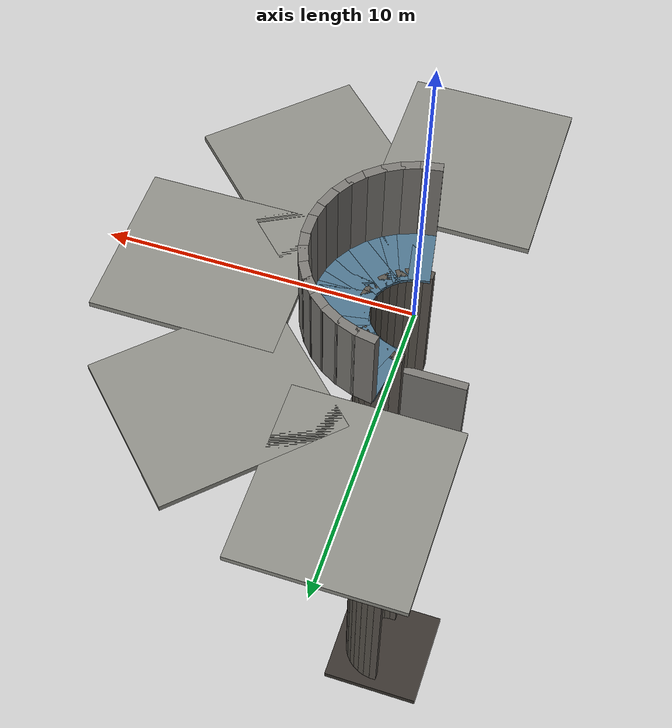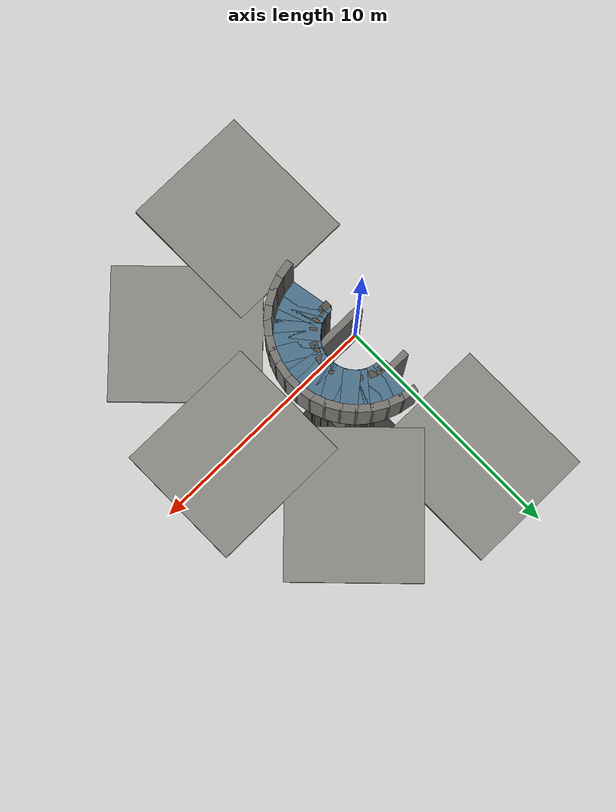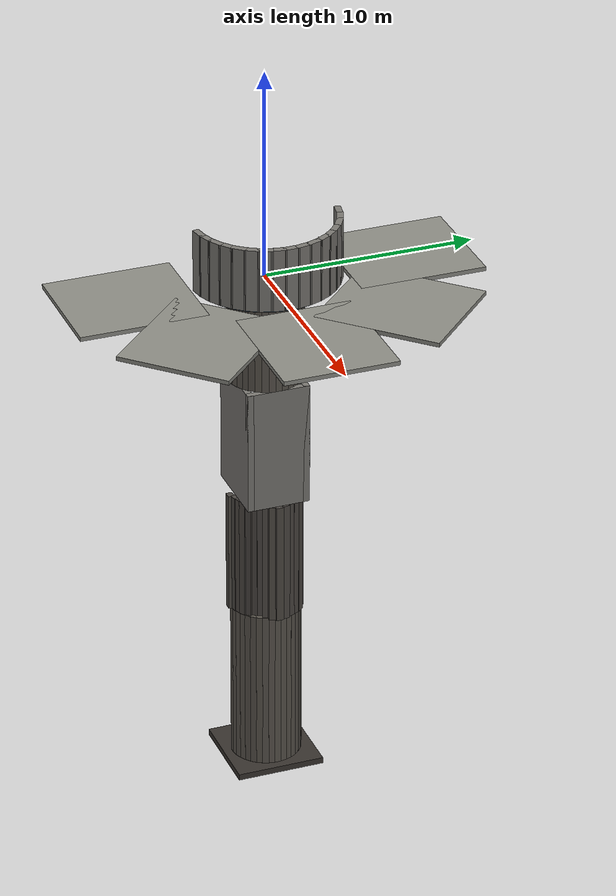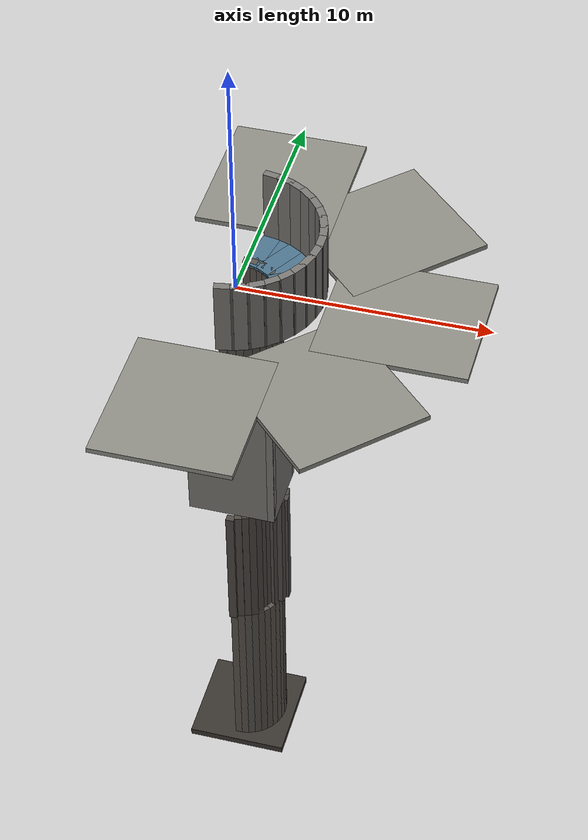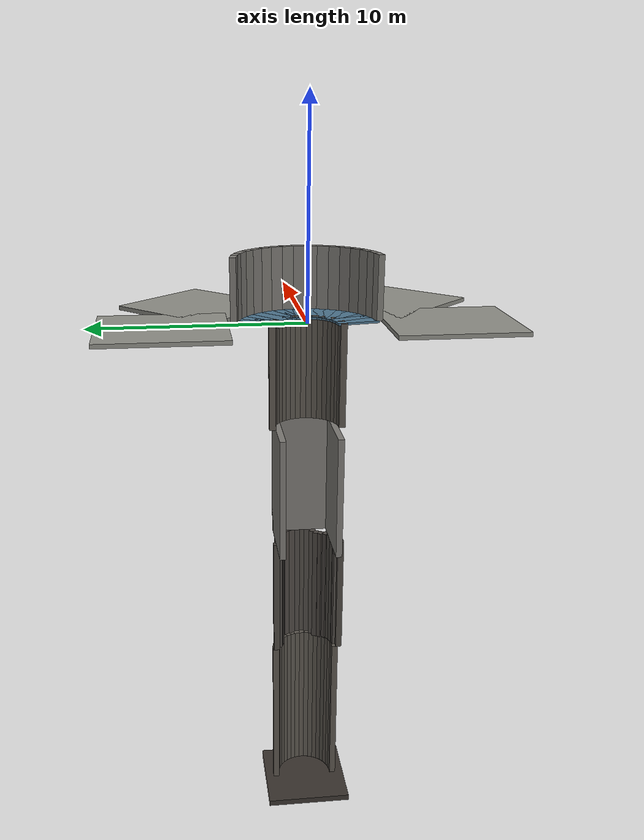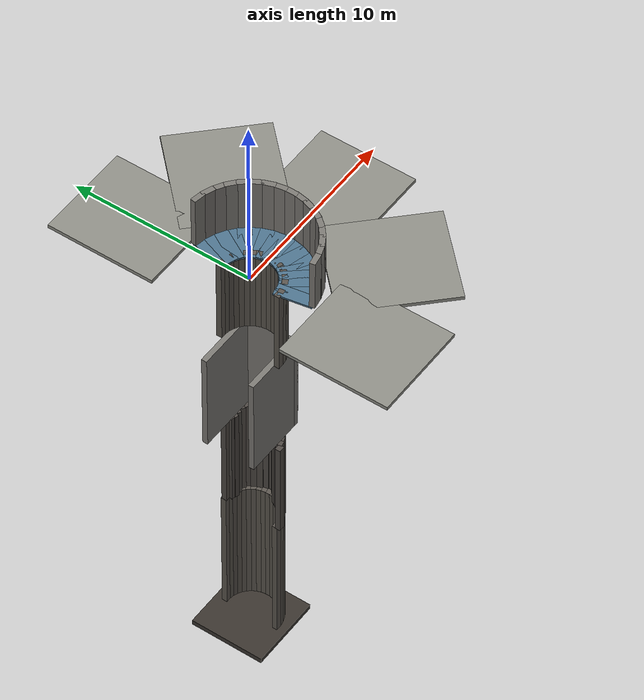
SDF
<sdf version="1.9">
 <world name="vshaft">
  <model name="inspection_shaft">
   <static>true</static>
   <link name="b0_chamber_0">
    <pose>3.3500 0.0000 1.5000 0 0 0.000000</pose>
    <collision name="c"><geometry><box><size>0.300 0.700 3.000</size></box></geometry></collision>
    <visual name="v">
     <geometry><box><size>0.300 0.700 3.000</size></box></geometry>
     <material><ambient>0.48 0.47 0.45 1</ambient><diffuse>0.48 0.47 0.45 1</diffuse></material>
    </visual>
   </link>
   <link name="b0_chamber_1">
    <pose>3.2991 0.5817 1.5000 0 0 0.174533</pose>
    <collision name="c"><geometry><box><size>0.300 0.700 3.000</size></box></geometry></collision>
    <visual name="v">
     <geometry><box><size>0.300 0.700 3.000</size></box></geometry>
     <material><ambient>0.48 0.47 0.45 1</ambient><diffuse>0.48 0.47 0.45 1</diffuse></material>
    </visual>
   </link>
   <link name="b0_chamber_2">
    <pose>3.1480 1.1458 1.5000 0 0 0.349066</pose>
    <collision name="c"><geometry><box><size>0.300 0.700 3.000</size></box></geometry></collision>
    <visual name="v">
     <geometry><box><size>0.300 0.700 3.000</size></box></geometry>
     <material><ambient>0.48 0.47 0.45 1</ambient><diffuse>0.48 0.47 0.45 1</diffuse></material>
    </visual>
   </link>
   <link name="b0_chamber_3">
    <pose>2.9012 1.6750 1.5000 0 0 0.523599</pose>
    <collision name="c"><geometry><box><size>0.300 0.700 3.000</size></box></geometry></collision>
    <visual name="v">
     <geometry><box><size>0.300 0.700 3.000</size></box></geometry>
     <material><ambient>0.48 0.47 0.45 1</ambient><diffuse>0.48 0.47 0.45 1</diffuse></material>
    </visual>
   </link>
   <link name="b0_chamber_4">
    <pose>2.5662 2.1533 1.5000 0 0 0.698132</pose>
    <collision name="c"><geometry><box><size>0.300 0.700 3.000</size></box></geometry></collision>
    <visual name="v">
     <geometry><box><size>0.300 0.700 3.000</size></box></geometry>
     <material><ambient>0.48 0.47 0.45 1</ambient><diffuse>0.48 0.47 0.45 1</diffuse></material>
    </visual>
   </link>
   <link name="b0_chamber_5">
    <pose>2.1533 2.5662 1.5000 0 0 0.872665</pose>
    <collision name="c"><geometry><box><size>0.300 0.700 3.000</size></box></geometry></collision>
    <visual name="v">
     <geometry><box><size>0.300 0.700 3.000</size></box></geometry>
     <material><ambient>0.48 0.47 0.45 1</ambient><diffuse>0.48 0.47 0.45 1</diffuse></material>
    </visual>
   </link>
   <link name="b0_chamber_6">
    <pose>1.6750 2.9012 1.5000 0 0 1.047198</pose>
    <collision name="c"><geometry><box><size>0.300 0.700 3.000</size></box></geometry></collision>
    <visual name="v">
     <geometry><box><size>0.300 0.700 3.000</size></box></geometry>
     <material><ambient>0.48 0.47 0.45 1</ambient><diffuse>0.48 0.47 0.45 1</diffuse></material>
    </visual>
   </link>
   <link name="b0_chamber_7">
    <pose>1.1458 3.1480 1.5000 0 0 1.221730</pose>
    <collision name="c"><geometry><box><size>0.300 0.700 3.000</size></box></geometry></collision>
    <visual name="v">
     <geometry><box><size>0.300 0.700 3.000</size></box></geometry>
     <material><ambient>0.48 0.47 0.45 1</ambient><diffuse>0.48 0.47 0.45 1</diffuse></material>
    </visual>
   </link>
   <link name="b0_chamber_8">
    <pose>0.5817 3.2991 1.5000 0 0 1.396263</pose>
    <collision name="c"><geometry><box><size>0.300 0.700 3.000</size></box></geometry></collision>
    <visual name="v">
     <geometry><box><size>0.300 0.700 3.000</size></box></geometry>
     <material><ambient>0.48 0.47 0.45 1</ambient><diffuse>0.48 0.47 0.45 1</diffuse></material>
    </visual>
   </link>
   <link name="b0_chamber_28">
    <pose>0.5817 -3.2991 1.5000 0 0 4.886922</pose>
    <collision name="c"><geometry><box><size>0.300 0.700 3.000</size></box></geometry></collision>
    <visual name="v">
     <geometry><box><size>0.300 0.700 3.000</size></box></geometry>
     <material><ambient>0.48 0.47 0.45 1</ambient><diffuse>0.48 0.47 0.45 1</diffuse></material>
    </visual>
   </link>
   <link name="b0_chamber_29">
    <pose>1.1458 -3.1480 1.5000 0 0 5.061455</pose>
    <collision name="c"><geometry><box><size>0.300 0.700 3.000</size></box></geometry></collision>
    <visual name="v">
     <geometry><box><size>0.300 0.700 3.000</size></box></geometry>
     <material><ambient>0.48 0.47 0.45 1</ambient><diffuse>0.48 0.47 0.45 1</diffuse></material>
    </visual>
   </link>
   <link name="b0_chamber_30">
    <pose>1.6750 -2.9012 1.5000 0 0 5.235988</pose>
    <collision name="c"><geometry><box><size>0.300 0.700 3.000</size></box></geometry></collision>
    <visual name="v">
     <geometry><box><size>0.300 0.700 3.000</size></box></geometry>
     <material><ambient>0.48 0.47 0.45 1</ambient><diffuse>0.48 0.47 0.45 1</diffuse></material>
    </visual>
   </link>
   <link name="b0_chamber_31">
    <pose>2.1533 -2.5662 1.5000 0 0 5.410521</pose>
    <collision name="c"><geometry><box><size>0.300 0.700 3.000</size></box></geometry></collision>
    <visual name="v">
     <geometry><box><size>0.300 0.700 3.000</size></box></geometry>
     <material><ambient>0.48 0.47 0.45 1</ambient><diffuse>0.48 0.47 0.45 1</diffuse></material>
    </visual>
   </link>
   <link name="b0_chamber_32">
    <pose>2.5662 -2.1533 1.5000 0 0 5.585054</pose>
    <collision name="c"><geometry><box><size>0.300 0.700 3.000</size></box></geometry></collision>
    <visual name="v">
     <geometry><box><size>0.300 0.700 3.000</size></box></geometry>
     <material><ambient>0.48 0.47 0.45 1</ambient><diffuse>0.48 0.47 0.45 1</diffuse></material>
    </visual>
   </link>
   <link name="b0_chamber_33">
    <pose>2.9012 -1.6750 1.5000 0 0 5.759587</pose>
    <collision name="c"><geometry><box><size>0.300 0.700 3.000</size></box></geometry></collision>
    <visual name="v">
     <geometry><box><size>0.300 0.700 3.000</size></box></geometry>
     <material><ambient>0.48 0.47 0.45 1</ambient><diffuse>0.48 0.47 0.45 1</diffuse></material>
    </visual>
   </link>
   <link name="b0_chamber_34">
    <pose>3.1480 -1.1458 1.5000 0 0 5.934119</pose>
    <collision name="c"><geometry><box><size>0.300 0.700 3.000</size></box></geometry></collision>
    <visual name="v">
     <geometry><box><size>0.300 0.700 3.000</size></box></geometry>
     <material><ambient>0.48 0.47 0.45 1</ambient><diffuse>0.48 0.47 0.45 1</diffuse></material>
    </visual>
   </link>
   <link name="b0_chamber_35">
    <pose>3.2991 -0.5817 1.5000 0 0 6.108652</pose>
    <collision name="c"><geometry><box><size>0.300 0.700 3.000</size></box></geometry></collision>
    <visual name="v">
     <geometry><box><size>0.300 0.700 3.000</size></box></geometry>
     <material><ambient>0.48 0.47 0.45 1</ambient><diffuse>0.48 0.47 0.45 1</diffuse></material>
    </visual>
   </link>
   <link name="ledge_ring_0">
    <pose>2.3500 0.0000 -0.0500 0 0 0.000000</pose>
    <collision name="c"><geometry><box><size>2.000 0.700 0.100</size></box></geometry></collision>
    <visual name="v">
     <geometry><box><size>2.000 0.700 0.100</size></box></geometry>
     <material><ambient>0.30 0.45 0.55 1</ambient><diffuse>0.30 0.45 0.55 1</diffuse></material>
    </visual>
   </link>
   <link name="ledge_ring_1">
    <pose>2.3143 0.4081 -0.0500 0 0 0.174533</pose>
    <collision name="c"><geometry><box><size>2.000 0.700 0.100</size></box></geometry></collision>
    <visual name="v">
     <geometry><box><size>2.000 0.700 0.100</size></box></geometry>
     <material><ambient>0.30 0.45 0.55 1</ambient><diffuse>0.30 0.45 0.55 1</diffuse></material>
    </visual>
   </link>
   <link name="ledge_ring_2">
    <pose>2.2083 0.8037 -0.0500 0 0 0.349066</pose>
    <collision name="c"><geometry><box><size>2.000 0.700 0.100</size></box></geometry></collision>
    <visual name="v">
     <geometry><box><size>2.000 0.700 0.100</size></box></geometry>
     <material><ambient>0.30 0.45 0.55 1</ambient><diffuse>0.30 0.45 0.55 1</diffuse></material>
    </visual>
   </link>
   <link name="ledge_ring_3">
    <pose>2.0352 1.1750 -0.0500 0 0 0.523599</pose>
    <collision name="c"><geometry><box><size>2.000 0.700 0.100</size></box></geometry></collision>
    <visual name="v">
     <geometry><box><size>2.000 0.700 0.100</size></box></geometry>
     <material><ambient>0.30 0.45 0.55 1</ambient><diffuse>0.30 0.45 0.55 1</diffuse></material>
    </visual>
   </link>
   <link name="ledge_ring_4">
    <pose>1.8002 1.5106 -0.0500 0 0 0.698132</pose>
    <collision name="c"><geometry><box><size>2.000 0.700 0.100</size></box></geometry></collision>
    <visual name="v">
     <geometry><box><size>2.000 0.700 0.100</size></box></geometry>
     <material><ambient>0.30 0.45 0.55 1</ambient><diffuse>0.30 0.45 0.55 1</diffuse></material>
    </visual>
   </link>
   <link name="ledge_ring_5">
    <pose>1.5106 1.8002 -0.0500 0 0 0.872665</pose>
    <collision name="c"><geometry><box><size>2.000 0.700 0.100</size></box></geometry></collision>
    <visual name="v">
     <geometry><box><size>2.000 0.700 0.100</size></box></geometry>
     <material><ambient>0.30 0.45 0.55 1</ambient><diffuse>0.30 0.45 0.55 1</diffuse></material>
    </visual>
   </link>
   <link name="ledge_ring_6">
    <pose>1.1750 2.0352 -0.0500 0 0 1.047198</pose>
    <collision name="c"><geometry><box><size>2.000 0.700 0.100</size></box></geometry></collision>
    <visual name="v">
     <geometry><box><size>2.000 0.700 0.100</size></box></geometry>
     <material><ambient>0.30 0.45 0.55 1</ambient><diffuse>0.30 0.45 0.55 1</diffuse></material>
    </visual>
   </link>
   <link name="ledge_ring_7">
    <pose>0.8037 2.2083 -0.0500 0 0 1.221730</pose>
    <collision name="c"><geometry><box><size>2.000 0.700 0.100</size></box></geometry></collision>
    <visual name="v">
     <geometry><box><size>2.000 0.700 0.100</size></box></geometry>
     <material><ambient>0.30 0.45 0.55 1</ambient><diffuse>0.30 0.45 0.55 1</diffuse></material>
    </visual>
   </link>
   <link name="ledge_ring_8">
    <pose>0.4081 2.3143 -0.0500 0 0 1.396263</pose>
    <collision name="c"><geometry><box><size>2.000 0.700 0.100</size></box></geometry></collision>
    <visual name="v">
     <geometry><box><size>2.000 0.700 0.100</size></box></geometry>
     <material><ambient>0.30 0.45 0.55 1</ambient><diffuse>0.30 0.45 0.55 1</diffuse></material>
    </visual>
   </link>
   <link name="ledge_ring_28">
    <pose>0.4081 -2.3143 -0.0500 0 0 4.886922</pose>
    <collision name="c"><geometry><box><size>2.000 0.700 0.100</size></box></geometry></collision>
    <visual name="v">
     <geometry><box><size>2.000 0.700 0.100</size></box></geometry>
     <material><ambient>0.30 0.45 0.55 1</ambient><diffuse>0.30 0.45 0.55 1</diffuse></material>
    </visual>
   </link>
   <link name="ledge_ring_29">
    <pose>0.8037 -2.2083 -0.0500 0 0 5.061455</pose>
    <collision name="c"><geometry><box><size>2.000 0.700 0.100</size></box></geometry></collision>
    <visual name="v">
     <geometry><box><size>2.000 0.700 0.100</size></box></geometry>
     <material><ambient>0.30 0.45 0.55 1</ambient><diffuse>0.30 0.45 0.55 1</diffuse></material>
    </visual>
   </link>
   <link name="ledge_ring_30">
    <pose>1.1750 -2.0352 -0.0500 0 0 5.235988</pose>
    <collision name="c"><geometry><box><size>2.000 0.700 0.100</size></box></geometry></collision>
    <visual name="v">
     <geometry><box><size>2.000 0.700 0.100</size></box></geometry>
     <material><ambient>0.30 0.45 0.55 1</ambient><diffuse>0.30 0.45 0.55 1</diffuse></material>
    </visual>
   </link>
   <link name="ledge_ring_31">
    <pose>1.5106 -1.8002 -0.0500 0 0 5.410521</pose>
    <collision name="c"><geometry><box><size>2.000 0.700 0.100</size></box></geometry></collision>
    <visual name="v">
     <geometry><box><size>2.000 0.700 0.100</size></box></geometry>
     <material><ambient>0.30 0.45 0.55 1</ambient><diffuse>0.30 0.45 0.55 1</diffuse></material>
    </visual>
   </link>
   <link name="ledge_ring_32">
    <pose>1.8002 -1.5106 -0.0500 0 0 5.585054</pose>
    <collision name="c"><geometry><box><size>2.000 0.700 0.100</size></box></geometry></collision>
    <visual name="v">
     <geometry><box><size>2.000 0.700 0.100</size></box></geometry>
     <material><ambient>0.30 0.45 0.55 1</ambient><diffuse>0.30 0.45 0.55 1</diffuse></material>
    </visual>
   </link>
   <link name="ledge_ring_33">
    <pose>2.0352 -1.1750 -0.0500 0 0 5.759587</pose>
    <collision name="c"><geometry><box><size>2.000 0.700 0.100</size></box></geometry></collision>
    <visual name="v">
     <geometry><box><size>2.000 0.700 0.100</size></box></geometry>
     <material><ambient>0.30 0.45 0.55 1</ambient><diffuse>0.30 0.45 0.55 1</diffuse></material>
    </visual>
   </link>
   <link name="ledge_ring_34">
    <pose>2.2083 -0.8037 -0.0500 0 0 5.934119</pose>
    <collision name="c"><geometry><box><size>2.000 0.700 0.100</size></box></geometry></collision>
    <visual name="v">
     <geometry><box><size>2.000 0.700 0.100</size></box></geometry>
     <material><ambient>0.30 0.45 0.55 1</ambient><diffuse>0.30 0.45 0.55 1</diffuse></material>
    </visual>
   </link>
   <link name="ledge_ring_35">
    <pose>2.3143 -0.4081 -0.0500 0 0 6.108652</pose>
    <collision name="c"><geometry><box><size>2.000 0.700 0.100</size></box></geometry></collision>
    <visual name="v">
     <geometry><box><size>2.000 0.700 0.100</size></box></geometry>
     <material><ambient>0.30 0.45 0.55 1</ambient><diffuse>0.30 0.45 0.55 1</diffuse></material>
    </visual>
   </link>
   <link name="b1_circ_0">
    <pose>1.6500 0.0000 -2.5000 0 0 0.000000</pose>
    <collision name="c"><geometry><box><size>0.300 0.328 5.000</size></box></geometry></collision>
    <visual name="v">
     <geometry><box><size>0.300 0.328 5.000</size></box></geometry>
     <material><ambient>0.35 0.33 0.30 1</ambient><diffuse>0.35 0.33 0.30 1</diffuse></material>
    </visual>
   </link>
   <link name="b1_circ_1">
    <pose>1.6249 0.2865 -2.5000 0 0 0.174533</pose>
    <collision name="c"><geometry><box><size>0.300 0.328 5.000</size></box></geometry></collision>
    <visual name="v">
     <geometry><box><size>0.300 0.328 5.000</size></box></geometry>
     <material><ambient>0.35 0.33 0.30 1</ambient><diffuse>0.35 0.33 0.30 1</diffuse></material>
    </visual>
   </link>
   <link name="b1_circ_2">
    <pose>1.5505 0.5643 -2.5000 0 0 0.349066</pose>
    <collision name="c"><geometry><box><size>0.300 0.328 5.000</size></box></geometry></collision>
    <visual name="v">
     <geometry><box><size>0.300 0.328 5.000</size></box></geometry>
     <material><ambient>0.35 0.33 0.30 1</ambient><diffuse>0.35 0.33 0.30 1</diffuse></material>
    </visual>
   </link>
   <link name="b1_circ_3">
    <pose>1.4289 0.8250 -2.5000 0 0 0.523599</pose>
    <collision name="c"><geometry><box><size>0.300 0.328 5.000</size></box></geometry></collision>
    <visual name="v">
     <geometry><box><size>0.300 0.328 5.000</size></box></geometry>
     <material><ambient>0.35 0.33 0.30 1</ambient><diffuse>0.35 0.33 0.30 1</diffuse></material>
    </visual>
   </link>
   <link name="b1_circ_4">
    <pose>1.2640 1.0606 -2.5000 0 0 0.698132</pose>
    <collision name="c"><geometry><box><size>0.300 0.328 5.000</size></box></geometry></collision>
    <visual name="v">
     <geometry><box><size>0.300 0.328 5.000</size></box></geometry>
     <material><ambient>0.35 0.33 0.30 1</ambient><diffuse>0.35 0.33 0.30 1</diffuse></material>
    </visual>
   </link>
   <link name="b1_circ_5">
    <pose>1.0606 1.2640 -2.5000 0 0 0.872665</pose>
    <collision name="c"><geometry><box><size>0.300 0.328 5.000</size></box></geometry></collision>
    <visual name="v">
     <geometry><box><size>0.300 0.328 5.000</size></box></geometry>
     <material><ambient>0.35 0.33 0.30 1</ambient><diffuse>0.35 0.33 0.30 1</diffuse></material>
    </visual>
   </link>
   <link name="b1_circ_6">
    <pose>0.8250 1.4289 -2.5000 0 0 1.047198</pose>
    <collision name="c"><geometry><box><size>0.300 0.328 5.000</size></box></geometry></collision>
    <visual name="v">
     <geometry><box><size>0.300 0.328 5.000</size></box></geometry>
     <material><ambient>0.35 0.33 0.30 1</ambient><diffuse>0.35 0.33 0.30 1</diffuse></material>
    </visual>
   </link>
   <link name="b1_circ_7">
    <pose>0.5643 1.5505 -2.5000 0 0 1.221730</pose>
    <collision name="c"><geometry><box><size>0.300 0.328 5.000</size></box></geometry></collision>
    <visual name="v">
     <geometry><box><size>0.300 0.328 5.000</size></box></geometry>
     <material><ambient>0.35 0.33 0.30 1</ambient><diffuse>0.35 0.33 0.30 1</diffuse></material>
    </visual>
   </link>
   <link name="b1_circ_8">
    <pose>0.2865 1.6249 -2.5000 0 0 1.396263</pose>
    <collision name="c"><geometry><box><size>0.300 0.328 5.000</size></box></geometry></collision>
    <visual name="v">
     <geometry><box><size>0.300 0.328 5.000</size></box></geometry>
     <material><ambient>0.35 0.33 0.30 1</ambient><diffuse>0.35 0.33 0.30 1</diffuse></material>
    </visual>
   </link>
   <link name="b1_circ_9">
    <pose>0.0000 1.6500 -2.5000 0 0 1.570796</pose>
    <collision name="c"><geometry><box><size>0.300 0.328 5.000</size></box></geometry></collision>
    <visual name="v">
     <geometry><box><size>0.300 0.328 5.000</size></box></geometry>
     <material><ambient>0.35 0.33 0.30 1</ambient><diffuse>0.35 0.33 0.30 1</diffuse></material>
    </visual>
   </link>
   <link name="b1_circ_27">
    <pose>-0.0000 -1.6500 -2.5000 0 0 4.712389</pose>
    <collision name="c"><geometry><box><size>0.300 0.328 5.000</size></box></geometry></collision>
    <visual name="v">
     <geometry><box><size>0.300 0.328 5.000</size></box></geometry>
     <material><ambient>0.35 0.33 0.30 1</ambient><diffuse>0.35 0.33 0.30 1</diffuse></material>
    </visual>
   </link>
   <link name="b1_circ_28">
    <pose>0.2865 -1.6249 -2.5000 0 0 4.886922</pose>
    <collision name="c"><geometry><box><size>0.300 0.328 5.000</size></box></geometry></collision>
    <visual name="v">
     <geometry><box><size>0.300 0.328 5.000</size></box></geometry>
     <material><ambient>0.35 0.33 0.30 1</ambient><diffuse>0.35 0.33 0.30 1</diffuse></material>
    </visual>
   </link>
   <link name="b1_circ_29">
    <pose>0.5643 -1.5505 -2.5000 0 0 5.061455</pose>
    <collision name="c"><geometry><box><size>0.300 0.328 5.000</size></box></geometry></collision>
    <visual name="v">
     <geometry><box><size>0.300 0.328 5.000</size></box></geometry>
     <material><ambient>0.35 0.33 0.30 1</ambient><diffuse>0.35 0.33 0.30 1</diffuse></material>
    </visual>
   </link>
   <link name="b1_circ_30">
    <pose>0.8250 -1.4289 -2.5000 0 0 5.235988</pose>
    <collision name="c"><geometry><box><size>0.300 0.328 5.000</size></box></geometry></collision>
    <visual name="v">
     <geometry><box><size>0.300 0.328 5.000</size></box></geometry>
     <material><ambient>0.35 0.33 0.30 1</ambient><diffuse>0.35 0.33 0.30 1</diffuse></material>
    </visual>
   </link>
   <link name="b1_circ_31">
    <pose>1.0606 -1.2640 -2.5000 0 0 5.410521</pose>
    <collision name="c"><geometry><box><size>0.300 0.328 5.000</size></box></geometry></collision>
    <visual name="v">
     <geometry><box><size>0.300 0.328 5.000</size></box></geometry>
     <material><ambient>0.35 0.33 0.30 1</ambient><diffuse>0.35 0.33 0.30 1</diffuse></material>
    </visual>
   </link>
   <link name="b1_circ_32">
    <pose>1.2640 -1.0606 -2.5000 0 0 5.585054</pose>
    <collision name="c"><geometry><box><size>0.300 0.328 5.000</size></box></geometry></collision>
    <visual name="v">
     <geometry><box><size>0.300 0.328 5.000</size></box></geometry>
     <material><ambient>0.35 0.33 0.30 1</ambient><diffuse>0.35 0.33 0.30 1</diffuse></material>
    </visual>
   </link>
   <link name="b1_circ_33">
    <pose>1.4289 -0.8250 -2.5000 0 0 5.759587</pose>
    <collision name="c"><geometry><box><size>0.300 0.328 5.000</size></box></geometry></collision>
    <visual name="v">
     <geometry><box><size>0.300 0.328 5.000</size></box></geometry>
     <material><ambient>0.35 0.33 0.30 1</ambient><diffuse>0.35 0.33 0.30 1</diffuse></material>
    </visual>
   </link>
   <link name="b1_circ_34">
    <pose>1.5505 -0.5643 -2.5000 0 0 5.934119</pose>
    <collision name="c"><geometry><box><size>0.300 0.328 5.000</size></box></geometry></collision>
    <visual name="v">
     <geometry><box><size>0.300 0.328 5.000</size></box></geometry>
     <material><ambient>0.35 0.33 0.30 1</ambient><diffuse>0.35 0.33 0.30 1</diffuse></material>
    </visual>
   </link>
   <link name="b1_circ_35">
    <pose>1.6249 -0.2865 -2.5000 0 0 6.108652</pose>
    <collision name="c"><geometry><box><size>0.300 0.328 5.000</size></box></geometry></collision>
    <visual name="v">
     <geometry><box><size>0.300 0.328 5.000</size></box></geometry>
     <material><ambient>0.35 0.33 0.30 1</ambient><diffuse>0.35 0.33 0.30 1</diffuse></material>
    </visual>
   </link>
   <link name="b2_rect_px">
    <pose>1.6500 0.0000 -8.0000 0 0 0.000000</pose>
    <collision name="c"><geometry><box><size>0.300 3.000 6.000</size></box></geometry></collision>
    <visual name="v">
     <geometry><box><size>0.300 3.000 6.000</size></box></geometry>
     <material><ambient>0.48 0.47 0.45 1</ambient><diffuse>0.48 0.47 0.45 1</diffuse></material>
    </visual>
   </link>
   <link name="b2_rect_py">
    <pose>0.0000 1.3500 -8.0000 0 0 0.000000</pose>
    <collision name="c"><geometry><box><size>3.600 0.300 6.000</size></box></geometry></collision>
    <visual name="v">
     <geometry><box><size>3.600 0.300 6.000</size></box></geometry>
     <material><ambient>0.48 0.47 0.45 1</ambient><diffuse>0.48 0.47 0.45 1</diffuse></material>
    </visual>
   </link>
   <link name="b2_rect_ny">
    <pose>0.0000 -1.3500 -8.0000 0 0 0.000000</pose>
    <collision name="c"><geometry><box><size>3.600 0.300 6.000</size></box></geometry></collision>
    <visual name="v">
     <geometry><box><size>3.600 0.300 6.000</size></box></geometry>
     <material><ambient>0.48 0.47 0.45 1</ambient><diffuse>0.48 0.47 0.45 1</diffuse></material>
    </visual>
   </link>
   <link name="b3_rough_0">
    <pose>1.8280 0.0000 -14.0000 0 0 0.000000</pose>
    <collision name="c"><geometry><box><size>0.300 0.367 6.000</size></box></geometry></collision>
    <visual name="v">
     <geometry><box><size>0.300 0.367 6.000</size></box></geometry>
     <material><ambient>0.30 0.28 0.26 1</ambient><diffuse>0.30 0.28 0.26 1</diffuse></material>
    </visual>
   </link>
   <link name="b3_rough_1">
    <pose>1.7618 0.3106 -14.0000 0 0 0.174533</pose>
    <collision name="c"><geometry><box><size>0.300 0.358 6.000</size></box></geometry></collision>
    <visual name="v">
     <geometry><box><size>0.300 0.358 6.000</size></box></geometry>
     <material><ambient>0.30 0.28 0.26 1</ambient><diffuse>0.30 0.28 0.26 1</diffuse></material>
    </visual>
   </link>
   <link name="b3_rough_2">
    <pose>1.6144 0.5876 -14.0000 0 0 0.349066</pose>
    <collision name="c"><geometry><box><size>0.300 0.343 6.000</size></box></geometry></collision>
    <visual name="v">
     <geometry><box><size>0.300 0.343 6.000</size></box></geometry>
     <material><ambient>0.30 0.28 0.26 1</ambient><diffuse>0.30 0.28 0.26 1</diffuse></material>
    </visual>
   </link>
   <link name="b3_rough_3">
    <pose>1.4885 0.8594 -14.0000 0 0 0.523599</pose>
    <collision name="c"><geometry><box><size>0.300 0.343 6.000</size></box></geometry></collision>
    <visual name="v">
     <geometry><box><size>0.300 0.343 6.000</size></box></geometry>
     <material><ambient>0.30 0.28 0.26 1</ambient><diffuse>0.30 0.28 0.26 1</diffuse></material>
    </visual>
   </link>
   <link name="b3_rough_4">
    <pose>1.3326 1.1182 -14.0000 0 0 0.698132</pose>
    <collision name="c"><geometry><box><size>0.300 0.348 6.000</size></box></geometry></collision>
    <visual name="v">
     <geometry><box><size>0.300 0.348 6.000</size></box></geometry>
     <material><ambient>0.30 0.28 0.26 1</ambient><diffuse>0.30 0.28 0.26 1</diffuse></material>
    </visual>
   </link>
   <link name="b3_rough_5">
    <pose>1.0639 1.2679 -14.0000 0 0 0.872665</pose>
    <collision name="c"><geometry><box><size>0.300 0.329 6.000</size></box></geometry></collision>
    <visual name="v">
     <geometry><box><size>0.300 0.329 6.000</size></box></geometry>
     <material><ambient>0.30 0.28 0.26 1</ambient><diffuse>0.30 0.28 0.26 1</diffuse></material>
    </visual>
   </link>
   <link name="b3_rough_6">
    <pose>0.7289 1.2624 -14.0000 0 0 1.047198</pose>
    <collision name="c"><geometry><box><size>0.300 0.286 6.000</size></box></geometry></collision>
    <visual name="v">
     <geometry><box><size>0.300 0.286 6.000</size></box></geometry>
     <material><ambient>0.30 0.28 0.26 1</ambient><diffuse>0.30 0.28 0.26 1</diffuse></material>
    </visual>
   </link>
   <link name="b3_rough_7">
    <pose>0.4443 1.2206 -14.0000 0 0 1.221730</pose>
    <collision name="c"><geometry><box><size>0.300 0.251 6.000</size></box></geometry></collision>
    <visual name="v">
     <geometry><box><size>0.300 0.251 6.000</size></box></geometry>
     <material><ambient>0.30 0.28 0.26 1</ambient><diffuse>0.30 0.28 0.26 1</diffuse></material>
    </visual>
   </link>
   <link name="b3_rough_8">
    <pose>0.2291 1.2995 -14.0000 0 0 1.396263</pose>
    <collision name="c"><geometry><box><size>0.300 0.256 6.000</size></box></geometry></collision>
    <visual name="v">
     <geometry><box><size>0.300 0.256 6.000</size></box></geometry>
     <material><ambient>0.30 0.28 0.26 1</ambient><diffuse>0.30 0.28 0.26 1</diffuse></material>
    </visual>
   </link>
   <link name="b3_rough_9">
    <pose>0.0000 1.4822 -14.0000 0 0 1.570796</pose>
    <collision name="c"><geometry><box><size>0.300 0.291 6.000</size></box></geometry></collision>
    <visual name="v">
     <geometry><box><size>0.300 0.291 6.000</size></box></geometry>
     <material><ambient>0.30 0.28 0.26 1</ambient><diffuse>0.30 0.28 0.26 1</diffuse></material>
    </visual>
   </link>
   <link name="b3_rough_27">
    <pose>-0.0000 -1.7178 -14.0000 0 0 4.712389</pose>
    <collision name="c"><geometry><box><size>0.300 0.343 6.000</size></box></geometry></collision>
    <visual name="v">
     <geometry><box><size>0.300 0.343 6.000</size></box></geometry>
     <material><ambient>0.30 0.28 0.26 1</ambient><diffuse>0.30 0.28 0.26 1</diffuse></material>
    </visual>
   </link>
   <link name="b3_rough_28">
    <pose>0.2738 -1.5525 -14.0000 0 0 4.886922</pose>
    <collision name="c"><geometry><box><size>0.300 0.312 6.000</size></box></geometry></collision>
    <visual name="v">
     <geometry><box><size>0.300 0.312 6.000</size></box></geometry>
     <material><ambient>0.30 0.28 0.26 1</ambient><diffuse>0.30 0.28 0.26 1</diffuse></material>
    </visual>
   </link>
   <link name="b3_rough_29">
    <pose>0.5283 -1.4514 -14.0000 0 0 5.061455</pose>
    <collision name="c"><geometry><box><size>0.300 0.305 6.000</size></box></geometry></collision>
    <visual name="v">
     <geometry><box><size>0.300 0.305 6.000</size></box></geometry>
     <material><ambient>0.30 0.28 0.26 1</ambient><diffuse>0.30 0.28 0.26 1</diffuse></material>
    </visual>
   </link>
   <link name="b3_rough_30">
    <pose>0.7726 -1.3381 -14.0000 0 0 5.235988</pose>
    <collision name="c"><geometry><box><size>0.300 0.305 6.000</size></box></geometry></collision>
    <visual name="v">
     <geometry><box><size>0.300 0.305 6.000</size></box></geometry>
     <material><ambient>0.30 0.28 0.26 1</ambient><diffuse>0.30 0.28 0.26 1</diffuse></material>
    </visual>
   </link>
   <link name="b3_rough_31">
    <pose>0.9445 -1.1256 -14.0000 0 0 5.410521</pose>
    <collision name="c"><geometry><box><size>0.300 0.289 6.000</size></box></geometry></collision>
    <visual name="v">
     <geometry><box><size>0.300 0.289 6.000</size></box></geometry>
     <material><ambient>0.30 0.28 0.26 1</ambient><diffuse>0.30 0.28 0.26 1</diffuse></material>
    </visual>
   </link>
   <link name="b3_rough_32">
    <pose>1.0332 -0.8669 -14.0000 0 0 5.585054</pose>
    <collision name="c"><geometry><box><size>0.300 0.262 6.000</size></box></geometry></collision>
    <visual name="v">
     <geometry><box><size>0.300 0.262 6.000</size></box></geometry>
     <material><ambient>0.30 0.28 0.26 1</ambient><diffuse>0.30 0.28 0.26 1</diffuse></material>
    </visual>
   </link>
   <link name="b3_rough_33">
    <pose>1.1533 -0.6659 -14.0000 0 0 5.759587</pose>
    <collision name="c"><geometry><box><size>0.300 0.258 6.000</size></box></geometry></collision>
    <visual name="v">
     <geometry><box><size>0.300 0.258 6.000</size></box></geometry>
     <material><ambient>0.30 0.28 0.26 1</ambient><diffuse>0.30 0.28 0.26 1</diffuse></material>
    </visual>
   </link>
   <link name="b3_rough_34">
    <pose>1.4015 -0.5101 -14.0000 0 0 5.934119</pose>
    <collision name="c"><geometry><box><size>0.300 0.293 6.000</size></box></geometry></collision>
    <visual name="v">
     <geometry><box><size>0.300 0.293 6.000</size></box></geometry>
     <material><ambient>0.30 0.28 0.26 1</ambient><diffuse>0.30 0.28 0.26 1</diffuse></material>
    </visual>
   </link>
   <link name="b3_rough_35">
    <pose>1.6895 -0.2979 -14.0000 0 0 6.108652</pose>
    <collision name="c"><geometry><box><size>0.300 0.342 6.000</size></box></geometry></collision>
    <visual name="v">
     <geometry><box><size>0.300 0.342 6.000</size></box></geometry>
     <material><ambient>0.30 0.28 0.26 1</ambient><diffuse>0.30 0.28 0.26 1</diffuse></material>
    </visual>
   </link>
   <link name="b4_d_0">
    <pose>1.5300 0.0000 -21.0000 0 0 0.000000</pose>
    <collision name="c"><geometry><box><size>0.300 0.302 8.000</size></box></geometry></collision>
    <visual name="v">
     <geometry><box><size>0.300 0.302 8.000</size></box></geometry>
     <material><ambient>0.35 0.33 0.30 1</ambient><diffuse>0.35 0.33 0.30 1</diffuse></material>
    </visual>
   </link>
   <link name="b4_d_1">
    <pose>1.5068 0.2657 -21.0000 0 0 0.174533</pose>
    <collision name="c"><geometry><box><size>0.300 0.302 8.000</size></box></geometry></collision>
    <visual name="v">
     <geometry><box><size>0.300 0.302 8.000</size></box></geometry>
     <material><ambient>0.35 0.33 0.30 1</ambient><diffuse>0.35 0.33 0.30 1</diffuse></material>
    </visual>
   </link>
   <link name="b4_d_2">
    <pose>1.4377 0.5233 -21.0000 0 0 0.349066</pose>
    <collision name="c"><geometry><box><size>0.300 0.302 8.000</size></box></geometry></collision>
    <visual name="v">
     <geometry><box><size>0.300 0.302 8.000</size></box></geometry>
     <material><ambient>0.35 0.33 0.30 1</ambient><diffuse>0.35 0.33 0.30 1</diffuse></material>
    </visual>
   </link>
   <link name="b4_d_3">
    <pose>1.3250 0.7650 -21.0000 0 0 0.523599</pose>
    <collision name="c"><geometry><box><size>0.300 0.302 8.000</size></box></geometry></collision>
    <visual name="v">
     <geometry><box><size>0.300 0.302 8.000</size></box></geometry>
     <material><ambient>0.35 0.33 0.30 1</ambient><diffuse>0.35 0.33 0.30 1</diffuse></material>
    </visual>
   </link>
   <link name="b4_d_4">
    <pose>1.1720 0.9835 -21.0000 0 0 0.698132</pose>
    <collision name="c"><geometry><box><size>0.300 0.302 8.000</size></box></geometry></collision>
    <visual name="v">
     <geometry><box><size>0.300 0.302 8.000</size></box></geometry>
     <material><ambient>0.35 0.33 0.30 1</ambient><diffuse>0.35 0.33 0.30 1</diffuse></material>
    </visual>
   </link>
   <link name="b4_d_5">
    <pose>0.9835 1.1720 -21.0000 0 0 0.872665</pose>
    <collision name="c"><geometry><box><size>0.300 0.302 8.000</size></box></geometry></collision>
    <visual name="v">
     <geometry><box><size>0.300 0.302 8.000</size></box></geometry>
     <material><ambient>0.35 0.33 0.30 1</ambient><diffuse>0.35 0.33 0.30 1</diffuse></material>
    </visual>
   </link>
   <link name="b4_d_6">
    <pose>0.7650 1.3250 -21.0000 0 0 1.047198</pose>
    <collision name="c"><geometry><box><size>0.300 0.302 8.000</size></box></geometry></collision>
    <visual name="v">
     <geometry><box><size>0.300 0.302 8.000</size></box></geometry>
     <material><ambient>0.35 0.33 0.30 1</ambient><diffuse>0.35 0.33 0.30 1</diffuse></material>
    </visual>
   </link>
   <link name="b4_d_7">
    <pose>0.5233 1.4377 -21.0000 0 0 1.221730</pose>
    <collision name="c"><geometry><box><size>0.300 0.302 8.000</size></box></geometry></collision>
    <visual name="v">
     <geometry><box><size>0.300 0.302 8.000</size></box></geometry>
     <material><ambient>0.35 0.33 0.30 1</ambient><diffuse>0.35 0.33 0.30 1</diffuse></material>
    </visual>
   </link>
   <link name="b4_d_8">
    <pose>0.2657 1.5068 -21.0000 0 0 1.396263</pose>
    <collision name="c"><geometry><box><size>0.300 0.302 8.000</size></box></geometry></collision>
    <visual name="v">
     <geometry><box><size>0.300 0.302 8.000</size></box></geometry>
     <material><ambient>0.35 0.33 0.30 1</ambient><diffuse>0.35 0.33 0.30 1</diffuse></material>
    </visual>
   </link>
   <link name="b4_d_9">
    <pose>0.0000 1.5300 -21.0000 0 0 1.570796</pose>
    <collision name="c"><geometry><box><size>0.300 0.302 8.000</size></box></geometry></collision>
    <visual name="v">
     <geometry><box><size>0.300 0.302 8.000</size></box></geometry>
     <material><ambient>0.35 0.33 0.30 1</ambient><diffuse>0.35 0.33 0.30 1</diffuse></material>
    </visual>
   </link>
   <link name="b4_d_27">
    <pose>-0.0000 -1.5300 -21.0000 0 0 4.712389</pose>
    <collision name="c"><geometry><box><size>0.300 0.302 8.000</size></box></geometry></collision>
    <visual name="v">
     <geometry><box><size>0.300 0.302 8.000</size></box></geometry>
     <material><ambient>0.35 0.33 0.30 1</ambient><diffuse>0.35 0.33 0.30 1</diffuse></material>
    </visual>
   </link>
   <link name="b4_d_28">
    <pose>0.2657 -1.5068 -21.0000 0 0 4.886922</pose>
    <collision name="c"><geometry><box><size>0.300 0.302 8.000</size></box></geometry></collision>
    <visual name="v">
     <geometry><box><size>0.300 0.302 8.000</size></box></geometry>
     <material><ambient>0.35 0.33 0.30 1</ambient><diffuse>0.35 0.33 0.30 1</diffuse></material>
    </visual>
   </link>
   <link name="b4_d_29">
    <pose>0.5233 -1.4377 -21.0000 0 0 5.061455</pose>
    <collision name="c"><geometry><box><size>0.300 0.302 8.000</size></box></geometry></collision>
    <visual name="v">
     <geometry><box><size>0.300 0.302 8.000</size></box></geometry>
     <material><ambient>0.35 0.33 0.30 1</ambient><diffuse>0.35 0.33 0.30 1</diffuse></material>
    </visual>
   </link>
   <link name="b4_d_30">
    <pose>0.7650 -1.3250 -21.0000 0 0 5.235988</pose>
    <collision name="c"><geometry><box><size>0.300 0.302 8.000</size></box></geometry></collision>
    <visual name="v">
     <geometry><box><size>0.300 0.302 8.000</size></box></geometry>
     <material><ambient>0.35 0.33 0.30 1</ambient><diffuse>0.35 0.33 0.30 1</diffuse></material>
    </visual>
   </link>
   <link name="b4_d_31">
    <pose>0.9835 -1.1720 -21.0000 0 0 5.410521</pose>
    <collision name="c"><geometry><box><size>0.300 0.302 8.000</size></box></geometry></collision>
    <visual name="v">
     <geometry><box><size>0.300 0.302 8.000</size></box></geometry>
     <material><ambient>0.35 0.33 0.30 1</ambient><diffuse>0.35 0.33 0.30 1</diffuse></material>
    </visual>
   </link>
   <link name="b4_d_32">
    <pose>1.1720 -0.9835 -21.0000 0 0 5.585054</pose>
    <collision name="c"><geometry><box><size>0.300 0.302 8.000</size></box></geometry></collision>
    <visual name="v">
     <geometry><box><size>0.300 0.302 8.000</size></box></geometry>
     <material><ambient>0.35 0.33 0.30 1</ambient><diffuse>0.35 0.33 0.30 1</diffuse></material>
    </visual>
   </link>
   <link name="b4_d_33">
    <pose>1.3250 -0.7650 -21.0000 0 0 5.759587</pose>
    <collision name="c"><geometry><box><size>0.300 0.302 8.000</size></box></geometry></collision>
    <visual name="v">
     <geometry><box><size>0.300 0.302 8.000</size></box></geometry>
     <material><ambient>0.35 0.33 0.30 1</ambient><diffuse>0.35 0.33 0.30 1</diffuse></material>
    </visual>
   </link>
   <link name="b4_d_34">
    <pose>1.4377 -0.5233 -21.0000 0 0 5.934119</pose>
    <collision name="c"><geometry><box><size>0.300 0.302 8.000</size></box></geometry></collision>
    <visual name="v">
     <geometry><box><size>0.300 0.302 8.000</size></box></geometry>
     <material><ambient>0.35 0.33 0.30 1</ambient><diffuse>0.35 0.33 0.30 1</diffuse></material>
    </visual>
   </link>
   <link name="b4_d_35">
    <pose>1.5068 -0.2657 -21.0000 0 0 6.108652</pose>
    <collision name="c"><geometry><box><size>0.300 0.302 8.000</size></box></geometry></collision>
    <visual name="v">
     <geometry><box><size>0.300 0.302 8.000</size></box></geometry>
     <material><ambient>0.35 0.33 0.30 1</ambient><diffuse>0.35 0.33 0.30 1</diffuse></material>
    </visual>
   </link>
   <link name="floor">
    <pose>0.0000 0.0000 -25.1500 0 0 0.000000</pose>
    <collision name="c"><geometry><box><size>4.200 4.200 0.300</size></box></geometry></collision>
    <visual name="v">
     <geometry><box><size>4.200 4.200 0.300</size></box></geometry>
     <material><ambient>0.22 0.20 0.18 1</ambient><diffuse>0.22 0.20 0.18 1</diffuse></material>
    </visual>
   </link>
   <link name="ground_0">
    <pose>6.6000 0.0000 -0.1000 0 0 0.000000</pose>
    <collision name="c"><geometry><box><size>6.000 5.400 0.200</size></box></geometry></collision>
    <visual name="v">
     <geometry><box><size>6.000 5.400 0.200</size></box></geometry>
     <material><ambient>0.55 0.55 0.52 1</ambient><diffuse>0.55 0.55 0.52 1</diffuse></material>
    </visual>
   </link>
   <link name="ground_1">
    <pose>4.6669 4.6669 -0.1000 0 0 0.785398</pose>
    <collision name="c"><geometry><box><size>6.000 5.400 0.200</size></box></geometry></collision>
    <visual name="v">
     <geometry><box><size>6.000 5.400 0.200</size></box></geometry>
     <material><ambient>0.55 0.55 0.52 1</ambient><diffuse>0.55 0.55 0.52 1</diffuse></material>
    </visual>
   </link>
   <link name="ground_2">
    <pose>0.0000 6.6000 -0.1000 0 0 1.570796</pose>
    <collision name="c"><geometry><box><size>6.000 5.400 0.200</size></box></geometry></collision>
    <visual name="v">
     <geometry><box><size>6.000 5.400 0.200</size></box></geometry>
     <material><ambient>0.55 0.55 0.52 1</ambient><diffuse>0.55 0.55 0.52 1</diffuse></material>
    </visual>
   </link>
   <link name="ground_6">
    <pose>-0.0000 -6.6000 -0.1000 0 0 4.712389</pose>
    <collision name="c"><geometry><box><size>6.000 5.400 0.200</size></box></geometry></collision>
    <visual name="v">
     <geometry><box><size>6.000 5.400 0.200</size></box></geometry>
     <material><ambient>0.55 0.55 0.52 1</ambient><diffuse>0.55 0.55 0.52 1</diffuse></material>
    </visual>
   </link>
   <link name="ground_7">
    <pose>4.6669 -4.6669 -0.1000 0 0 5.497787</pose>
    <collision name="c"><geometry><box><size>6.000 5.400 0.200</size></box></geometry></collision>
    <visual name="v">
     <geometry><box><size>6.000 5.400 0.200</size></box></geometry>
     <material><ambient>0.55 0.55 0.52 1</ambient><diffuse>0.55 0.55 0.52 1</diffuse></material>
    </visual>
   </link>
  </model>
 </world>
</sdf>
